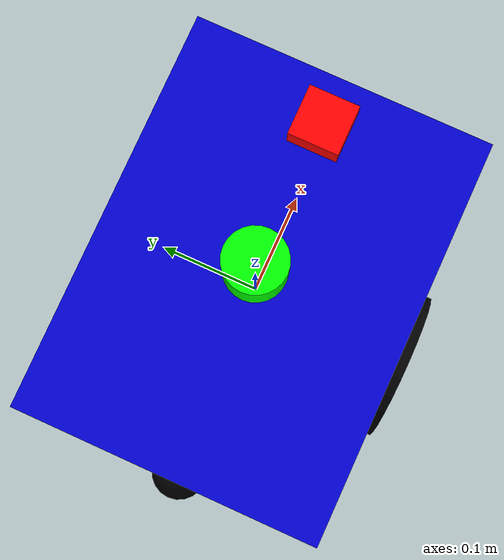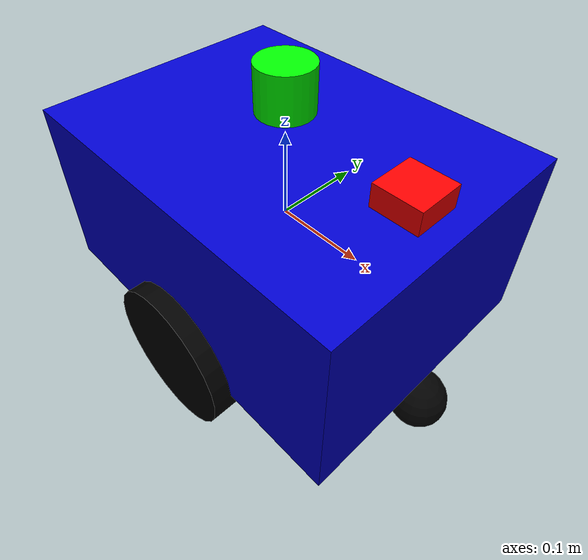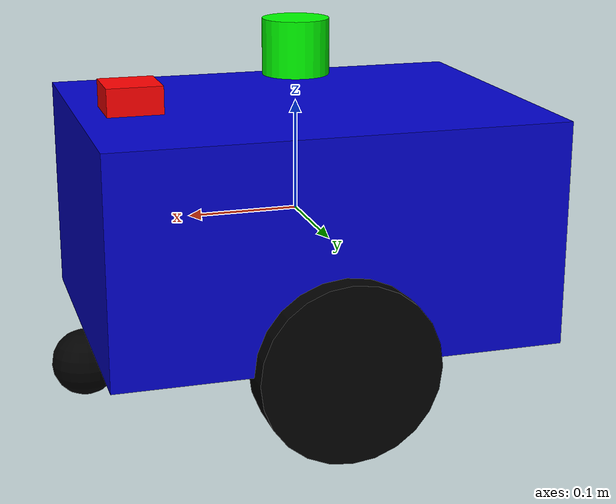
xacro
<?xml version="1.0"?>
<robot name="my_car" xmlns:xacro="http://www.ros.org/wiki/xacro">

  <!-- 定义参数 -->
  <xacro:property name="base_length" value="0.4" />
  <xacro:property name="base_width" value="0.3" />
  <xacro:property name="base_height" value="0.2" />
  <xacro:property name="wheel_radius" value="0.08" />
  <xacro:property name="wheel_width" value="0.04" />
  <xacro:property name="PI" value="3.14159" />

  <!-- 基础连杆 -->
  <link name="base_link">
    <visual>
      <geometry>
        <box size="${base_length} ${base_width} ${base_height}"/>
      </geometry>
      <material name="blue">
        <color rgba="0 0 0.8 1"/>
      </material>
    </visual>
    <collision>
      <geometry>
        <box size="${base_length} ${base_width} ${base_height}"/>
      </geometry>
    </collision>
    <inertial>
      <mass value="5.0"/>
      <inertia ixx="0.1" ixy="0.0" ixz="0.0" iyy="0.1" iyz="0.0" izz="0.1"/>
    </inertial>
  </link>

  <!-- 左轮 -->
  <link name="left_wheel">
    <visual>
      <geometry>
        <cylinder radius="${wheel_radius}" length="${wheel_width}"/>
      </geometry>
      <material name="black">
        <color rgba="0 0 0 1"/>
      </material>
    </visual>
    <collision>
      <geometry>
        <cylinder radius="${wheel_radius}" length="${wheel_width}"/>
      </geometry>
    </collision>
    <inertial>
      <mass value="0.5"/>
      <inertia ixx="0.001" ixy="0.0" ixz="0.0" iyy="0.001" iyz="0.0" izz="0.001"/>
    </inertial>
  </link>

  <!-- 右轮 -->
  <link name="right_wheel">
    <visual>
      <geometry>
        <cylinder radius="${wheel_radius}" length="${wheel_width}"/>
      </geometry>
      <material name="black">
        <color rgba="0 0 0 1"/>
      </material>
    </visual>
    <collision>
      <geometry>
        <cylinder radius="${wheel_radius}" length="${wheel_width}"/>
      </geometry>
    </collision>
    <inertial>
      <mass value="0.5"/>
      <inertia ixx="0.001" ixy="0.0" ixz="0.0" iyy="0.001" iyz="0.0" izz="0.001"/>
    </inertial>
  </link>

  <!-- 前支撑轮 -->
  <link name="front_caster">
    <visual>
      <geometry>
        <sphere radius="0.03"/>
      </geometry>
      <material name="black">
        <color rgba="0 0 0 1"/>
      </material>
    </visual>
    <collision>
      <geometry>
        <sphere radius="0.03"/>
      </geometry>
    </collision>
    <inertial>
      <mass value="0.1"/>
      <inertia ixx="0.0001" ixy="0.0" ixz="0.0" iyy="0.0001" iyz="0.0" izz="0.0001"/>
    </inertial>
  </link>

  <!-- 后支撑轮 -->
  <link name="rear_caster">
    <visual>
      <geometry>
        <sphere radius="0.03"/>
      </geometry>
      <material name="black">
        <color rgba="0 0 0 1"/>
      </material>
    </visual>
    <collision>
      <geometry>
        <sphere radius="0.03"/>
      </geometry>
    </collision>
    <inertial>
      <mass value="0.1"/>
      <inertia ixx="0.0001" ixy="0.0" ixz="0.0" iyy="0.0001" iyz="0.0" izz="0.0001"/>
    </inertial>
  </link>

  <!-- 左轮关节 -->
  <joint name="left_wheel_joint" type="continuous">
    <parent link="base_link"/>
    <child link="left_wheel"/>
    <origin xyz="0 ${base_width/2} -${base_height/2}" rpy="${PI/2} 0 0"/>
    <axis xyz="0 1 0"/>
  </joint>

  <!-- 右轮关节 -->
  <joint name="right_wheel_joint" type="continuous">
    <parent link="base_link"/>
    <child link="right_wheel"/>
    <origin xyz="0 -${base_width/2} -${base_height/2}" rpy="${PI/2} 0 0"/>
    <axis xyz="0 1 0"/>
  </joint>

  <!-- 前支撑轮关节 -->
  <joint name="front_caster_joint" type="fixed">
    <parent link="base_link"/>
    <child link="front_caster"/>
    <origin xyz="${base_length/2} 0 -${base_height/2 + 0.03}" rpy="0 0 0"/>
  </joint>

  <!-- 后支撑轮关节 -->
  <joint name="rear_caster_joint" type="fixed">
    <parent link="base_link"/>
    <child link="rear_caster"/>
    <origin xyz="-${base_length/2} 0 -${base_height/2 + 0.03}" rpy="0 0 0"/>
  </joint>

  <!-- 摄像头连杆 -->
  <link name="camera_link">
    <visual>
      <geometry>
        <box size="0.05 0.05 0.05"/>
      </geometry>
      <material name="red">
        <color rgba="1 0 0 1"/>
      </material>
    </visual>
    <inertial>
      <mass value="0.1"/>
      <inertia ixx="0.0001" ixy="0.0" ixz="0.0" iyy="0.0001" iyz="0.0" izz="0.0001"/>
    </inertial>
  </link>

  <joint name="camera_joint" type="fixed">
    <parent link="base_link"/>
    <child link="camera_link"/>
    <origin xyz="0.15 0 0.1" rpy="0 0 0"/>
  </joint>

  <!-- 激光雷达连杆 -->
  <link name="lidar_link">
    <visual>
      <geometry>
        <cylinder radius="0.03" length="0.05"/>
      </geometry>
      <material name="green">
        <color rgba="0 1 0 1"/>
      </material>
    </visual>
    <inertial>
      <mass value="0.1"/>
      <inertia ixx="0.0001" ixy="0.0" ixz="0.0" iyy="0.0001" iyz="0.0" izz="0.0001"/>
    </inertial>
  </link>

  <joint name="lidar_joint" type="fixed">
    <parent link="base_link"/>
    <child link="lidar_link"/>
    <origin xyz="0 0 0.15" rpy="0 0 0"/>
  </joint>

  <!-- Gazebo插件配置 -->

  <!-- 基础Gazebo属性 -->
  <gazebo reference="base_link">
    <material>Gazebo/Blue</material>
  </gazebo>

  <gazebo reference="left_wheel">
    <material>Gazebo/Black</material>
  </gazebo>

  <gazebo reference="right_wheel">
    <material>Gazebo/Black</material>
  </gazebo>

  <!-- 差速驱动插件 -->
  <gazebo>
    <plugin name="differential_drive_controller" filename="libgazebo_ros_diff_drive.so">
      <commandTopic>cmd_vel</commandTopic>
      <odometryTopic>odom</odometryTopic>
      <odometryFrame>odom</odometryFrame>
      <robotBaseFrame>base_link</robotBaseFrame>
      <publishOdomTF>true</publishOdomTF>
      <wheelSeparation>${base_width}</wheelSeparation>
      <wheelDiameter>${2 * wheel_radius}</wheelDiameter>
      <maxWheelTorque>20</maxWheelTorque>
      <maxWheelAcceleration>1.0</maxWheelAcceleration>
      <publishWheelTF>false</publishWheelTF>
      <publishTf>true</publishTf>
      <leftJoint>left_wheel_joint</leftJoint>
      <rightJoint>right_wheel_joint</rightJoint>
    </plugin>
  </gazebo>

  <!-- 摄像头插件 -->
  <gazebo reference="camera_link">
    <sensor type="camera" name="camera1">
      <update_rate>30.0</update_rate>
      <camera name="head">
        <horizontal_fov>1.3962634</horizontal_fov>
        <image>
          <width>640</width>
          <height>480</height>
          <format>R8G8B8</format>
        </image>
        <clip>
          <near>0.02</near>
          <far>300</far>
        </clip>
        <noise>
          <type>gaussian</type>
          <mean>0.0</mean>
          <stddev>0.007</stddev>
        </noise>
      </camera>
      <plugin name="camera_controller" filename="libgazebo_ros_camera.so">
        <alwaysOn>true</alwaysOn>
        <updateRate>0.0</updateRate>
        <cameraName>camera</cameraName>
        <imageTopicName>image_raw</imageTopicName>
        <cameraInfoTopicName>camera_info</cameraInfoTopicName>
        <frameName>camera_link</frameName>
        <hackBaseline>0.07</hackBaseline>
      </plugin>
    </sensor>
  </gazebo>

  <!-- 激光雷达插件 -->
  <gazebo reference="lidar_link">
    <sensor type="ray" name="lidar">
      <pose>0 0 0 0 0 0</pose>
      <visualize>true</visualize>
      <update_rate>10</update_rate>
      <ray>
        <scan>
          <horizontal>
            <samples>360</samples>
            <resolution>1</resolution>
            <min_angle>-${PI}</min_angle>
            <max_angle>${PI}</max_angle>
          </horizontal>
        </scan>
        <range>
          <min>0.10</min>
          <max>10.0</max>
          <resolution>0.01</resolution>
        </range>
        <noise>
          <type>gaussian</type>
          <mean>0.0</mean>
          <stddev>0.01</stddev>
        </noise>
      </ray>
      <plugin name="gazebo_ros_lidar_controller" filename="libgazebo_ros_ray_sensor.so">
        <topicName>scan</topicName>
        <frameName>lidar_link</frameName>
      </plugin>
    </sensor>
  </gazebo>

</robot>
